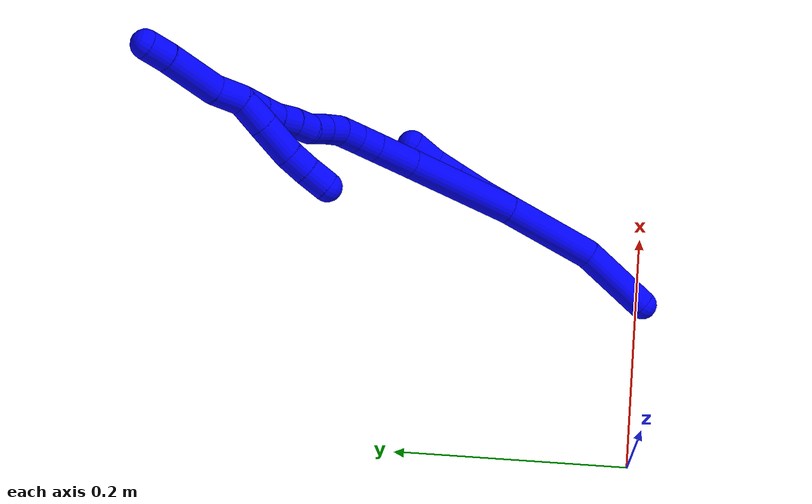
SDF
<sdf version="1.7">
 <world name="default">
  <model name="1">
   <static>0</static>
   <link name="1">
    <collision name="collision-cylinder-e_1_2_8">
     <pose>0.001618 -4.9e-05 -0.042204 3.14043 0.038319 3.08075</pose>
     <geometry><cylinder><radius>0.0125</radius><length>0.08447</length></cylinder></geometry>
     <surface>
      <friction><ode><mu>1.16</mu><mu2>1.16</mu2><slip1>0</slip1><slip2>0</slip2></ode></friction>
      <contact><ode><kp>1e+06</kp><kd>1</kd><max_vel>0</max_vel><min_depth>0.001</min_depth></ode></contact>
     </surface>
    </collision>
    <visual name="visual-cylinder-e_1_2_8">
     <pose>0.001618 -4.9e-05 -0.042204 3.14043 0.038319 3.08075</pose>
     <geometry><cylinder><radius>0.0125</radius><length>0.08447</length></cylinder></geometry>
     <material><ambient>0 0 1 1</ambient></material>
    </visual>
    <collision name="collision-cylinder-e_2_8_6">
     <pose>0.012809 -0.004185 -0.115476 3.0108 0.296504 2.3151</pose>
     <geometry><cylinder><radius>0.0125</radius><length>0.06553</length></cylinder></geometry>
     <surface>
      <friction><ode><mu>1.16</mu><mu2>1.16</mu2><slip1>0</slip1><slip2>0</slip2></ode></friction>
      <contact><ode><kp>1e+06</kp><kd>1</kd><max_vel>0</max_vel><min_depth>0.001</min_depth></ode></contact>
     </surface>
    </collision>
    <visual name="visual-cylinder-e_2_8_6">
     <pose>0.012809 -0.004185 -0.115476 3.0108 0.296504 2.3151</pose>
     <geometry><cylinder><radius>0.0125</radius><length>0.06553</length></cylinder></geometry>
     <material><ambient>0 0 1 1</ambient></material>
    </visual>
    <collision name="collision-cylinder-e_1_2_9">
     <pose>-0.002878 -0.00114 0.012801 0.088859 -0.220301 -0.009834</pose>
     <geometry><cylinder><radius>0.0125</radius><length>0.026339</length></cylinder></geometry>
     <surface>
      <friction><ode><mu>1.16</mu><mu2>1.16</mu2><slip1>0</slip1><slip2>0</slip2></ode></friction>
      <contact><ode><kp>1e+06</kp><kd>1</kd><max_vel>0</max_vel><min_depth>0.001</min_depth></ode></contact>
     </surface>
    </collision>
    <visual name="visual-cylinder-e_1_2_9">
     <pose>-0.002878 -0.00114 0.012801 0.088859 -0.220301 -0.009834</pose>
     <geometry><cylinder><radius>0.0125</radius><length>0.026339</length></cylinder></geometry>
     <material><ambient>0 0 1 1</ambient></material>
    </visual>
    <collision name="collision-cylinder-e_2_9_10">
     <pose>-0.009968 -0.003389 0.037918 0.089725 -0.328316 -0.014873</pose>
     <geometry><cylinder><radius>0.0125</radius><length>0.02613</length></cylinder></geometry>
     <surface>
      <friction><ode><mu>1.16</mu><mu2>1.16</mu2><slip1>0</slip1><slip2>0</slip2></ode></friction>
      <contact><ode><kp>1e+06</kp><kd>1</kd><max_vel>0</max_vel><min_depth>0.001</min_depth></ode></contact>
     </surface>
    </collision>
    <visual name="visual-cylinder-e_2_9_10">
     <pose>-0.009968 -0.003389 0.037918 0.089725 -0.328316 -0.014873</pose>
     <geometry><cylinder><radius>0.0125</radius><length>0.02613</length></cylinder></geometry>
     <material><ambient>0 0 1 1</ambient></material>
    </visual>
    <collision name="collision-cylinder-e_3_10_11">
     <pose>-0.01774 -0.005379 0.060574 0.085091 -0.330431 -0.014196</pose>
     <geometry><cylinder><radius>0.0125</radius><length>0.021939</length></cylinder></geometry>
     <surface>
      <friction><ode><mu>1.16</mu><mu2>1.16</mu2><slip1>0</slip1><slip2>0</slip2></ode></friction>
      <contact><ode><kp>1e+06</kp><kd>1</kd><max_vel>0</max_vel><min_depth>0.001</min_depth></ode></contact>
     </surface>
    </collision>
    <visual name="visual-cylinder-e_3_10_11">
     <pose>-0.01774 -0.005379 0.060574 0.085091 -0.330431 -0.014196</pose>
     <geometry><cylinder><radius>0.0125</radius><length>0.021939</length></cylinder></geometry>
     <material><ambient>0 0 1 1</ambient></material>
    </visual>
    <collision name="collision-cylinder-e_4_11_5">
     <pose>-0.023196 -0.004497 0.083444 -0.139857 -0.148766 0.010439</pose>
     <geometry><cylinder><radius>0.0125</radius><length>0.025592</length></cylinder></geometry>
     <surface>
      <friction><ode><mu>1.16</mu><mu2>1.16</mu2><slip1>0</slip1><slip2>0</slip2></ode></friction>
      <contact><ode><kp>1e+06</kp><kd>1</kd><max_vel>0</max_vel><min_depth>0.001</min_depth></ode></contact>
     </surface>
    </collision>
    <visual name="visual-cylinder-e_4_11_5">
     <pose>-0.023196 -0.004497 0.083444 -0.139857 -0.148766 0.010439</pose>
     <geometry><cylinder><radius>0.0125</radius><length>0.025592</length></cylinder></geometry>
     <material><ambient>0 0 1 1</ambient></material>
    </visual>
    <collision name="collision-cylinder-e_1_2_12">
     <pose>0.005429 5e-05 0.050999 -0.000976 0.106056 -5.2e-05</pose>
     <geometry><cylinder><radius>0.0125</radius><length>0.102573</length></cylinder></geometry>
     <surface>
      <friction><ode><mu>1.16</mu><mu2>1.16</mu2><slip1>0</slip1><slip2>0</slip2></ode></friction>
      <contact><ode><kp>1e+06</kp><kd>1</kd><max_vel>0</max_vel><min_depth>0.001</min_depth></ode></contact>
     </surface>
    </collision>
    <visual name="visual-cylinder-e_1_2_12">
     <pose>0.005429 5e-05 0.050999 -0.000976 0.106056 -5.2e-05</pose>
     <geometry><cylinder><radius>0.0125</radius><length>0.102573</length></cylinder></geometry>
     <material><ambient>0 0 1 1</ambient></material>
    </visual>
    <collision name="collision-cylinder-e_2_12_13">
     <pose>0.01356 0.00046 0.120339 -0.019657 0.146229 -0.00144</pose>
     <geometry><cylinder><radius>0.0125</radius><length>0.037088</length></cylinder></geometry>
     <surface>
      <friction><ode><mu>1.16</mu><mu2>1.16</mu2><slip1>0</slip1><slip2>0</slip2></ode></friction>
      <contact><ode><kp>1e+06</kp><kd>1</kd><max_vel>0</max_vel><min_depth>0.001</min_depth></ode></contact>
     </surface>
    </collision>
    <visual name="visual-cylinder-e_2_12_13">
     <pose>0.01356 0.00046 0.120339 -0.019657 0.146229 -0.00144</pose>
     <geometry><cylinder><radius>0.0125</radius><length>0.037088</length></cylinder></geometry>
     <material><ambient>0 0 1 1</ambient></material>
    </visual>
    <collision name="collision-cylinder-e_3_13_14">
     <pose>0.017778 0.001038 0.148612 -0.021862 0.151491 -0.001659</pose>
     <geometry><cylinder><radius>0.0125</radius><length>0.020094</length></cylinder></geometry>
     <surface>
      <friction><ode><mu>1.16</mu><mu2>1.16</mu2><slip1>0</slip1><slip2>0</slip2></ode></friction>
      <contact><ode><kp>1e+06</kp><kd>1</kd><max_vel>0</max_vel><min_depth>0.001</min_depth></ode></contact>
     </surface>
    </collision>
    <visual name="visual-cylinder-e_3_13_14">
     <pose>0.017778 0.001038 0.148612 -0.021862 0.151491 -0.001659</pose>
     <geometry><cylinder><radius>0.0125</radius><length>0.020094</length></cylinder></geometry>
     <material><ambient>0 0 1 1</ambient></material>
    </visual>
    <collision name="collision-cylinder-e_4_14_15">
     <pose>0.02241 0.002307 0.168101 -0.109589 0.313308 -0.017326</pose>
     <geometry><cylinder><radius>0.0125</radius><length>0.020219</length></cylinder></geometry>
     <surface>
      <friction><ode><mu>1.16</mu><mu2>1.16</mu2><slip1>0</slip1><slip2>0</slip2></ode></friction>
      <contact><ode><kp>1e+06</kp><kd>1</kd><max_vel>0</max_vel><min_depth>0.001</min_depth></ode></contact>
     </surface>
    </collision>
    <visual name="visual-cylinder-e_4_14_15">
     <pose>0.02241 0.002307 0.168101 -0.109589 0.313308 -0.017326</pose>
     <geometry><cylinder><radius>0.0125</radius><length>0.020219</length></cylinder></geometry>
     <material><ambient>0 0 1 1</ambient></material>
    </visual>
    <collision name="collision-cylinder-e_5_15_16">
     <pose>0.031077 0.003463 0.185988 -0.012569 0.587879 -0.003805</pose>
     <geometry><cylinder><radius>0.0125</radius><length>0.020016</length></cylinder></geometry>
     <surface>
      <friction><ode><mu>1.16</mu><mu2>1.16</mu2><slip1>0</slip1><slip2>0</slip2></ode></friction>
      <contact><ode><kp>1e+06</kp><kd>1</kd><max_vel>0</max_vel><min_depth>0.001</min_depth></ode></contact>
     </surface>
    </collision>
    <visual name="visual-cylinder-e_5_15_16">
     <pose>0.031077 0.003463 0.185988 -0.012569 0.587879 -0.003805</pose>
     <geometry><cylinder><radius>0.0125</radius><length>0.020016</length></cylinder></geometry>
     <material><ambient>0 0 1 1</ambient></material>
    </visual>
    <collision name="collision-cylinder-e_6_16_17">
     <pose>0.043248 0.004052 0.201797 -0.0646 0.723429 -0.024449</pose>
     <geometry><cylinder><radius>0.0125</radius><length>0.020004</length></cylinder></geometry>
     <surface>
      <friction><ode><mu>1.16</mu><mu2>1.16</mu2><slip1>0</slip1><slip2>0</slip2></ode></friction>
      <contact><ode><kp>1e+06</kp><kd>1</kd><max_vel>0</max_vel><min_depth>0.001</min_depth></ode></contact>
     </surface>
    </collision>
    <visual name="visual-cylinder-e_6_16_17">
     <pose>0.043248 0.004052 0.201797 -0.0646 0.723429 -0.024449</pose>
     <geometry><cylinder><radius>0.0125</radius><length>0.020004</length></cylinder></geometry>
     <material><ambient>0 0 1 1</ambient></material>
    </visual>
    <collision name="collision-cylinder-e_7_17_18">
     <pose>0.053791 0.005833 0.218387 -0.141419 0.402907 -0.028927</pose>
     <geometry><cylinder><radius>0.0125</radius><length>0.020004</length></cylinder></geometry>
     <surface>
      <friction><ode><mu>1.16</mu><mu2>1.16</mu2><slip1>0</slip1><slip2>0</slip2></ode></friction>
      <contact><ode><kp>1e+06</kp><kd>1</kd><max_vel>0</max_vel><min_depth>0.001</min_depth></ode></contact>
     </surface>
    </collision>
    <visual name="visual-cylinder-e_7_17_18">
     <pose>0.053791 0.005833 0.218387 -0.141419 0.402907 -0.028927</pose>
     <geometry><cylinder><radius>0.0125</radius><length>0.020004</length></cylinder></geometry>
     <material><ambient>0 0 1 1</ambient></material>
    </visual>
    <collision name="collision-cylinder-e_8_18_19">
     <pose>0.06221 0.00753 0.23642 -0.044783 0.466423 -0.010639</pose>
     <geometry><cylinder><radius>0.0125</radius><length>0.020001</length></cylinder></geometry>
     <surface>
      <friction><ode><mu>1.16</mu><mu2>1.16</mu2><slip1>0</slip1><slip2>0</slip2></ode></friction>
      <contact><ode><kp>1e+06</kp><kd>1</kd><max_vel>0</max_vel><min_depth>0.001</min_depth></ode></contact>
     </surface>
    </collision>
    <visual name="visual-cylinder-e_8_18_19">
     <pose>0.06221 0.00753 0.23642 -0.044783 0.466423 -0.010639</pose>
     <geometry><cylinder><radius>0.0125</radius><length>0.020001</length></cylinder></geometry>
     <material><ambient>0 0 1 1</ambient></material>
    </visual>
    <collision name="collision-cylinder-e_9_19_20">
     <pose>0.070106 0.009662 0.254587 -0.18531 0.346777 -0.032547</pose>
     <geometry><cylinder><radius>0.0125</radius><length>0.02</length></cylinder></geometry>
     <surface>
      <friction><ode><mu>1.16</mu><mu2>1.16</mu2><slip1>0</slip1><slip2>0</slip2></ode></friction>
      <contact><ode><kp>1e+06</kp><kd>1</kd><max_vel>0</max_vel><min_depth>0.001</min_depth></ode></contact>
     </surface>
    </collision>
    <visual name="visual-cylinder-e_9_19_20">
     <pose>0.070106 0.009662 0.254587 -0.18531 0.346777 -0.032547</pose>
     <geometry><cylinder><radius>0.0125</radius><length>0.02</length></cylinder></geometry>
     <material><ambient>0 0 1 1</ambient></material>
    </visual>
    <collision name="collision-cylinder-e_10_20_1">
     <pose>0.076649 0.013091 0.27317 -0.179652 0.319919 -0.029061</pose>
     <geometry><cylinder><radius>0.0125</radius><length>0.02</length></cylinder></geometry>
     <surface>
      <friction><ode><mu>1.16</mu><mu2>1.16</mu2><slip1>0</slip1><slip2>0</slip2></ode></friction>
      <contact><ode><kp>1e+06</kp><kd>1</kd><max_vel>0</max_vel><min_depth>0.001</min_depth></ode></contact>
     </surface>
    </collision>
    <visual name="visual-cylinder-e_10_20_1">
     <pose>0.076649 0.013091 0.27317 -0.179652 0.319919 -0.029061</pose>
     <geometry><cylinder><radius>0.0125</radius><length>0.02</length></cylinder></geometry>
     <material><ambient>0 0 1 1</ambient></material>
    </visual>
    <collision name="collision-cylinder-e_1_1_21">
     <pose>0.083182 0.01123 0.270246 2.85929 0.259295 1.48485</pose>
     <geometry><cylinder><radius>0.0125</radius><length>0.026422</length></cylinder></geometry>
     <surface>
      <friction><ode><mu>1.16</mu><mu2>1.16</mu2><slip1>0</slip1><slip2>0</slip2></ode></friction>
      <contact><ode><kp>1e+06</kp><kd>1</kd><max_vel>0</max_vel><min_depth>0.001</min_depth></ode></contact>
     </surface>
    </collision>
    <visual name="visual-cylinder-e_1_1_21">
     <pose>0.083182 0.01123 0.270246 2.85929 0.259295 1.48485</pose>
     <geometry><cylinder><radius>0.0125</radius><length>0.026422</length></cylinder></geometry>
     <material><ambient>0 0 1 1</ambient></material>
    </visual>
    <collision name="collision-cylinder-e_2_21_22">
     <pose>0.090524 0.003427 0.242882 2.86749 0.246997 1.46568</pose>
     <geometry><cylinder><radius>0.0125</radius><length>0.032353</length></cylinder></geometry>
     <surface>
      <friction><ode><mu>1.16</mu><mu2>1.16</mu2><slip1>0</slip1><slip2>0</slip2></ode></friction>
      <contact><ode><kp>1e+06</kp><kd>1</kd><max_vel>0</max_vel><min_depth>0.001</min_depth></ode></contact>
     </surface>
    </collision>
    <visual name="visual-cylinder-e_2_21_22">
     <pose>0.090524 0.003427 0.242882 2.86749 0.246997 1.46568</pose>
     <geometry><cylinder><radius>0.0125</radius><length>0.032353</length></cylinder></geometry>
     <material><ambient>0 0 1 1</ambient></material>
    </visual>
    <collision name="collision-cylinder-e_3_22_23">
     <pose>0.096955 -0.002178 0.217986 3.00373 0.245299 2.12049</pose>
     <geometry><cylinder><radius>0.0125</radius><length>0.020391</length></cylinder></geometry>
     <surface>
      <friction><ode><mu>1.16</mu><mu2>1.16</mu2><slip1>0</slip1><slip2>0</slip2></ode></friction>
      <contact><ode><kp>1e+06</kp><kd>1</kd><max_vel>0</max_vel><min_depth>0.001</min_depth></ode></contact>
     </surface>
    </collision>
    <visual name="visual-cylinder-e_3_22_23">
     <pose>0.096955 -0.002178 0.217986 3.00373 0.245299 2.12049</pose>
     <geometry><cylinder><radius>0.0125</radius><length>0.020391</length></cylinder></geometry>
     <material><ambient>0 0 1 1</ambient></material>
    </visual>
    <collision name="collision-cylinder-e_4_23_4">
     <pose>0.102252 -0.004164 0.198181 3.07898 0.274254 2.69528</pose>
     <geometry><cylinder><radius>0.0125</radius><length>0.020833</length></cylinder></geometry>
     <surface>
      <friction><ode><mu>1.16</mu><mu2>1.16</mu2><slip1>0</slip1><slip2>0</slip2></ode></friction>
      <contact><ode><kp>1e+06</kp><kd>1</kd><max_vel>0</max_vel><min_depth>0.001</min_depth></ode></contact>
     </surface>
    </collision>
    <visual name="visual-cylinder-e_4_23_4">
     <pose>0.102252 -0.004164 0.198181 3.07898 0.274254 2.69528</pose>
     <geometry><cylinder><radius>0.0125</radius><length>0.020833</length></cylinder></geometry>
     <material><ambient>0 0 1 1</ambient></material>
    </visual>
    <collision name="collision-cylinder-e_1_1_24">
     <pose>0.081813 0.014195 0.295543 0.045418 0.153516 0.003494</pose>
     <geometry><cylinder><radius>0.0125</radius><length>0.026403</length></cylinder></geometry>
     <surface>
      <friction><ode><mu>1.16</mu><mu2>1.16</mu2><slip1>0</slip1><slip2>0</slip2></ode></friction>
      <contact><ode><kp>1e+06</kp><kd>1</kd><max_vel>0</max_vel><min_depth>0.001</min_depth></ode></contact>
     </surface>
    </collision>
    <visual name="visual-cylinder-e_1_1_24">
     <pose>0.081813 0.014195 0.295543 0.045418 0.153516 0.003494</pose>
     <geometry><cylinder><radius>0.0125</radius><length>0.026403</length></cylinder></geometry>
     <material><ambient>0 0 1 1</ambient></material>
    </visual>
    <collision name="collision-cylinder-e_2_24_25">
     <pose>0.086846 0.018128 0.333752 -0.177817 0.117309 -0.010469</pose>
     <geometry><cylinder><radius>0.0125</radius><length>0.051514</length></cylinder></geometry>
     <surface>
      <friction><ode><mu>1.16</mu><mu2>1.16</mu2><slip1>0</slip1><slip2>0</slip2></ode></friction>
      <contact><ode><kp>1e+06</kp><kd>1</kd><max_vel>0</max_vel><min_depth>0.001</min_depth></ode></contact>
     </surface>
    </collision>
    <visual name="visual-cylinder-e_2_24_25">
     <pose>0.086846 0.018128 0.333752 -0.177817 0.117309 -0.010469</pose>
     <geometry><cylinder><radius>0.0125</radius><length>0.051514</length></cylinder></geometry>
     <material><ambient>0 0 1 1</ambient></material>
    </visual>
    <collision name="collision-cylinder-e_3_25_3">
     <pose>0.091065 0.023838 0.369841 -0.108226 0.109235 -0.005923</pose>
     <geometry><cylinder><radius>0.0125</radius><length>0.022083</length></cylinder></geometry>
     <surface>
      <friction><ode><mu>1.16</mu><mu2>1.16</mu2><slip1>0</slip1><slip2>0</slip2></ode></friction>
      <contact><ode><kp>1e+06</kp><kd>1</kd><max_vel>0</max_vel><min_depth>0.001</min_depth></ode></contact>
     </surface>
    </collision>
    <visual name="visual-cylinder-e_3_25_3">
     <pose>0.091065 0.023838 0.369841 -0.108226 0.109235 -0.005923</pose>
     <geometry><cylinder><radius>0.0125</radius><length>0.022083</length></cylinder></geometry>
     <material><ambient>0 0 1 1</ambient></material>
    </visual>
    <collision name="collision-sphere-3">
     <pose>0.092268 0.025023 0.380752 0 -0 0</pose>
     <geometry><sphere><radius>0.0125</radius></sphere></geometry>
     <surface>
      <friction><ode><mu>1.16</mu><mu2>1.16</mu2><slip1>0</slip1><slip2>0</slip2></ode></friction>
      <contact><ode><kp>1e+06</kp><kd>1</kd><max_vel>0</max_vel><min_depth>0.001</min_depth></ode></contact>
     </surface>
    </collision>
    <visual name="visual-sphere-3">
     <pose>0.092268 0.025023 0.380752 0 -0 0</pose>
     <geometry><sphere><radius>0.0125</radius></sphere></geometry>
     <material><ambient>0 0 1 1</ambient></material>
    </visual>
    <collision name="collision-sphere-25">
     <pose>0.089861 0.022652 0.358929 0 -0 0</pose>
     <geometry><sphere><radius>0.0125</radius></sphere></geometry>
     <surface>
      <friction><ode><mu>1.16</mu><mu2>1.16</mu2><slip1>0</slip1><slip2>0</slip2></ode></friction>
      <contact><ode><kp>1e+06</kp><kd>1</kd><max_vel>0</max_vel><min_depth>0.001</min_depth></ode></contact>
     </surface>
    </collision>
    <visual name="visual-sphere-25">
     <pose>0.089861 0.022652 0.358929 0 -0 0</pose>
     <geometry><sphere><radius>0.0125</radius></sphere></geometry>
     <material><ambient>0 0 1 1</ambient></material>
    </visual>
    <collision name="collision-sphere-24">
     <pose>0.083832 0.013603 0.308575 0 -0 0</pose>
     <geometry><sphere><radius>0.0125</radius></sphere></geometry>
     <surface>
      <friction><ode><mu>1.16</mu><mu2>1.16</mu2><slip1>0</slip1><slip2>0</slip2></ode></friction>
      <contact><ode><kp>1e+06</kp><kd>1</kd><max_vel>0</max_vel><min_depth>0.001</min_depth></ode></contact>
     </surface>
    </collision>
    <visual name="visual-sphere-24">
     <pose>0.083832 0.013603 0.308575 0 -0 0</pose>
     <geometry><sphere><radius>0.0125</radius></sphere></geometry>
     <material><ambient>0 0 1 1</ambient></material>
    </visual>
    <collision name="collision-sphere-4">
     <pose>0.105073 -0.004792 0.188173 0 -0 0</pose>
     <geometry><sphere><radius>0.0125</radius></sphere></geometry>
     <surface>
      <friction><ode><mu>1.16</mu><mu2>1.16</mu2><slip1>0</slip1><slip2>0</slip2></ode></friction>
      <contact><ode><kp>1e+06</kp><kd>1</kd><max_vel>0</max_vel><min_depth>0.001</min_depth></ode></contact>
     </surface>
    </collision>
    <visual name="visual-sphere-4">
     <pose>0.105073 -0.004792 0.188173 0 -0 0</pose>
     <geometry><sphere><radius>0.0125</radius></sphere></geometry>
     <material><ambient>0 0 1 1</ambient></material>
    </visual>
    <collision name="collision-sphere-23">
     <pose>0.099431 -0.003537 0.208189 0 -0 0</pose>
     <geometry><sphere><radius>0.0125</radius></sphere></geometry>
     <surface>
      <friction><ode><mu>1.16</mu><mu2>1.16</mu2><slip1>0</slip1><slip2>0</slip2></ode></friction>
      <contact><ode><kp>1e+06</kp><kd>1</kd><max_vel>0</max_vel><min_depth>0.001</min_depth></ode></contact>
     </surface>
    </collision>
    <visual name="visual-sphere-23">
     <pose>0.099431 -0.003537 0.208189 0 -0 0</pose>
     <geometry><sphere><radius>0.0125</radius></sphere></geometry>
     <material><ambient>0 0 1 1</ambient></material>
    </visual>
    <collision name="collision-sphere-22">
     <pose>0.094479 -0.000818 0.227782 0 -0 0</pose>
     <geometry><sphere><radius>0.0125</radius></sphere></geometry>
     <surface>
      <friction><ode><mu>1.16</mu><mu2>1.16</mu2><slip1>0</slip1><slip2>0</slip2></ode></friction>
      <contact><ode><kp>1e+06</kp><kd>1</kd><max_vel>0</max_vel><min_depth>0.001</min_depth></ode></contact>
     </surface>
    </collision>
    <visual name="visual-sphere-22">
     <pose>0.094479 -0.000818 0.227782 0 -0 0</pose>
     <geometry><sphere><radius>0.0125</radius></sphere></geometry>
     <material><ambient>0 0 1 1</ambient></material>
    </visual>
    <collision name="collision-sphere-21">
     <pose>0.086569 0.007673 0.257982 0 -0 0</pose>
     <geometry><sphere><radius>0.0125</radius></sphere></geometry>
     <surface>
      <friction><ode><mu>1.16</mu><mu2>1.16</mu2><slip1>0</slip1><slip2>0</slip2></ode></friction>
      <contact><ode><kp>1e+06</kp><kd>1</kd><max_vel>0</max_vel><min_depth>0.001</min_depth></ode></contact>
     </surface>
    </collision>
    <visual name="visual-sphere-21">
     <pose>0.086569 0.007673 0.257982 0 -0 0</pose>
     <geometry><sphere><radius>0.0125</radius></sphere></geometry>
     <material><ambient>0 0 1 1</ambient></material>
    </visual>
    <collision name="collision-sphere-1">
     <pose>0.079794 0.014788 0.28251 0 -0 0</pose>
     <geometry><sphere><radius>0.0125</radius></sphere></geometry>
     <surface>
      <friction><ode><mu>1.16</mu><mu2>1.16</mu2><slip1>0</slip1><slip2>0</slip2></ode></friction>
      <contact><ode><kp>1e+06</kp><kd>1</kd><max_vel>0</max_vel><min_depth>0.001</min_depth></ode></contact>
     </surface>
    </collision>
    <visual name="visual-sphere-1">
     <pose>0.079794 0.014788 0.28251 0 -0 0</pose>
     <geometry><sphere><radius>0.0125</radius></sphere></geometry>
     <material><ambient>0 0 1 1</ambient></material>
    </visual>
    <collision name="collision-sphere-11">
     <pose>-0.021299 -0.006261 0.070913 0 -0 0</pose>
     <geometry><sphere><radius>0.0125</radius></sphere></geometry>
     <surface>
      <friction><ode><mu>1.16</mu><mu2>1.16</mu2><slip1>0</slip1><slip2>0</slip2></ode></friction>
      <contact><ode><kp>1e+06</kp><kd>1</kd><max_vel>0</max_vel><min_depth>0.001</min_depth></ode></contact>
     </surface>
    </collision>
    <visual name="visual-sphere-11">
     <pose>-0.021299 -0.006261 0.070913 0 -0 0</pose>
     <geometry><sphere><radius>0.0125</radius></sphere></geometry>
     <material><ambient>0 0 1 1</ambient></material>
    </visual>
    <collision name="collision-sphere-10">
     <pose>-0.014181 -0.004497 0.050236 0 -0 0</pose>
     <geometry><sphere><radius>0.0125</radius></sphere></geometry>
     <surface>
      <friction><ode><mu>1.16</mu><mu2>1.16</mu2><slip1>0</slip1><slip2>0</slip2></ode></friction>
      <contact><ode><kp>1e+06</kp><kd>1</kd><max_vel>0</max_vel><min_depth>0.001</min_depth></ode></contact>
     </surface>
    </collision>
    <visual name="visual-sphere-10">
     <pose>-0.014181 -0.004497 0.050236 0 -0 0</pose>
     <geometry><sphere><radius>0.0125</radius></sphere></geometry>
     <material><ambient>0 0 1 1</ambient></material>
    </visual>
    <collision name="collision-sphere-6">
     <pose>0.022382 -0.008272 -0.146543 0 -0 0</pose>
     <geometry><sphere><radius>0.0125</radius></sphere></geometry>
     <surface>
      <friction><ode><mu>1.16</mu><mu2>1.16</mu2><slip1>0</slip1><slip2>0</slip2></ode></friction>
      <contact><ode><kp>1e+06</kp><kd>1</kd><max_vel>0</max_vel><min_depth>0.001</min_depth></ode></contact>
     </surface>
    </collision>
    <visual name="visual-sphere-6">
     <pose>0.022382 -0.008272 -0.146543 0 -0 0</pose>
     <geometry><sphere><radius>0.0125</radius></sphere></geometry>
     <material><ambient>0 0 1 1</ambient></material>
    </visual>
    <collision name="collision-sphere-9">
     <pose>-0.005756 -0.002281 0.025601 0 -0 0</pose>
     <geometry><sphere><radius>0.0125</radius></sphere></geometry>
     <surface>
      <friction><ode><mu>1.16</mu><mu2>1.16</mu2><slip1>0</slip1><slip2>0</slip2></ode></friction>
      <contact><ode><kp>1e+06</kp><kd>1</kd><max_vel>0</max_vel><min_depth>0.001</min_depth></ode></contact>
     </surface>
    </collision>
    <visual name="visual-sphere-9">
     <pose>-0.005756 -0.002281 0.025601 0 -0 0</pose>
     <geometry><sphere><radius>0.0125</radius></sphere></geometry>
     <material><ambient>0 0 1 1</ambient></material>
    </visual>
    <collision name="collision-sphere-2">
     <geometry><sphere><radius>0.0125</radius></sphere></geometry>
     <surface>
      <friction><ode><mu>1.16</mu><mu2>1.16</mu2><slip1>0</slip1><slip2>0</slip2></ode></friction>
      <contact><ode><kp>1e+06</kp><kd>1</kd><max_vel>0</max_vel><min_depth>0.001</min_depth></ode></contact>
     </surface>
    </collision>
    <visual name="visual-sphere-2">
     <geometry><sphere><radius>0.0125</radius></sphere></geometry>
     <material><ambient>0 0 1 1</ambient></material>
    </visual>
    <collision name="collision-sphere-19">
     <pose>0.066707 0.007929 0.245343 0 -0 0</pose>
     <geometry><sphere><radius>0.0125</radius></sphere></geometry>
     <surface>
      <friction><ode><mu>1.16</mu><mu2>1.16</mu2><slip1>0</slip1><slip2>0</slip2></ode></friction>
      <contact><ode><kp>1e+06</kp><kd>1</kd><max_vel>0</max_vel><min_depth>0.001</min_depth></ode></contact>
     </surface>
    </collision>
    <visual name="visual-sphere-19">
     <pose>0.066707 0.007929 0.245343 0 -0 0</pose>
     <geometry><sphere><radius>0.0125</radius></sphere></geometry>
     <material><ambient>0 0 1 1</ambient></material>
    </visual>
    <collision name="collision-sphere-8">
     <pose>0.003236 -9.8e-05 -0.084408 0 -0 0</pose>
     <geometry><sphere><radius>0.0125</radius></sphere></geometry>
     <surface>
      <friction><ode><mu>1.16</mu><mu2>1.16</mu2><slip1>0</slip1><slip2>0</slip2></ode></friction>
      <contact><ode><kp>1e+06</kp><kd>1</kd><max_vel>0</max_vel><min_depth>0.001</min_depth></ode></contact>
     </surface>
    </collision>
    <visual name="visual-sphere-8">
     <pose>0.003236 -9.8e-05 -0.084408 0 -0 0</pose>
     <geometry><sphere><radius>0.0125</radius></sphere></geometry>
     <material><ambient>0 0 1 1</ambient></material>
    </visual>
    <collision name="collision-sphere-5">
     <pose>-0.025093 -0.002733 0.095975 0 -0 0</pose>
     <geometry><sphere><radius>0.0125</radius></sphere></geometry>
     <surface>
      <friction><ode><mu>1.16</mu><mu2>1.16</mu2><slip1>0</slip1><slip2>0</slip2></ode></friction>
      <contact><ode><kp>1e+06</kp><kd>1</kd><max_vel>0</max_vel><min_depth>0.001</min_depth></ode></contact>
     </surface>
    </collision>
    <visual name="visual-sphere-5">
     <pose>-0.025093 -0.002733 0.095975 0 -0 0</pose>
     <geometry><sphere><radius>0.0125</radius></sphere></geometry>
     <material><ambient>0 0 1 1</ambient></material>
    </visual>
    <collision name="collision-sphere-12">
     <pose>0.010858 0.0001 0.101997 0 -0 0</pose>
     <geometry><sphere><radius>0.0125</radius></sphere></geometry>
     <surface>
      <friction><ode><mu>1.16</mu><mu2>1.16</mu2><slip1>0</slip1><slip2>0</slip2></ode></friction>
      <contact><ode><kp>1e+06</kp><kd>1</kd><max_vel>0</max_vel><min_depth>0.001</min_depth></ode></contact>
     </surface>
    </collision>
    <visual name="visual-sphere-12">
     <pose>0.010858 0.0001 0.101997 0 -0 0</pose>
     <geometry><sphere><radius>0.0125</radius></sphere></geometry>
     <material><ambient>0 0 1 1</ambient></material>
    </visual>
    <collision name="collision-sphere-13">
     <pose>0.016262 0.000821 0.138682 0 -0 0</pose>
     <geometry><sphere><radius>0.0125</radius></sphere></geometry>
     <surface>
      <friction><ode><mu>1.16</mu><mu2>1.16</mu2><slip1>0</slip1><slip2>0</slip2></ode></friction>
      <contact><ode><kp>1e+06</kp><kd>1</kd><max_vel>0</max_vel><min_depth>0.001</min_depth></ode></contact>
     </surface>
    </collision>
    <visual name="visual-sphere-13">
     <pose>0.016262 0.000821 0.138682 0 -0 0</pose>
     <geometry><sphere><radius>0.0125</radius></sphere></geometry>
     <material><ambient>0 0 1 1</ambient></material>
    </visual>
    <collision name="collision-sphere-14">
     <pose>0.019295 0.001255 0.158541 0 -0 0</pose>
     <geometry><sphere><radius>0.0125</radius></sphere></geometry>
     <surface>
      <friction><ode><mu>1.16</mu><mu2>1.16</mu2><slip1>0</slip1><slip2>0</slip2></ode></friction>
      <contact><ode><kp>1e+06</kp><kd>1</kd><max_vel>0</max_vel><min_depth>0.001</min_depth></ode></contact>
     </surface>
    </collision>
    <visual name="visual-sphere-14">
     <pose>0.019295 0.001255 0.158541 0 -0 0</pose>
     <geometry><sphere><radius>0.0125</radius></sphere></geometry>
     <material><ambient>0 0 1 1</ambient></material>
    </visual>
    <collision name="collision-sphere-15">
     <pose>0.025526 0.003359 0.17766 0 -0 0</pose>
     <geometry><sphere><radius>0.0125</radius></sphere></geometry>
     <surface>
      <friction><ode><mu>1.16</mu><mu2>1.16</mu2><slip1>0</slip1><slip2>0</slip2></ode></friction>
      <contact><ode><kp>1e+06</kp><kd>1</kd><max_vel>0</max_vel><min_depth>0.001</min_depth></ode></contact>
     </surface>
    </collision>
    <visual name="visual-sphere-15">
     <pose>0.025526 0.003359 0.17766 0 -0 0</pose>
     <geometry><sphere><radius>0.0125</radius></sphere></geometry>
     <material><ambient>0 0 1 1</ambient></material>
    </visual>
    <collision name="collision-sphere-16">
     <pose>0.036627 0.003568 0.194315 0 -0 0</pose>
     <geometry><sphere><radius>0.0125</radius></sphere></geometry>
     <surface>
      <friction><ode><mu>1.16</mu><mu2>1.16</mu2><slip1>0</slip1><slip2>0</slip2></ode></friction>
      <contact><ode><kp>1e+06</kp><kd>1</kd><max_vel>0</max_vel><min_depth>0.001</min_depth></ode></contact>
     </surface>
    </collision>
    <visual name="visual-sphere-16">
     <pose>0.036627 0.003568 0.194315 0 -0 0</pose>
     <geometry><sphere><radius>0.0125</radius></sphere></geometry>
     <material><ambient>0 0 1 1</ambient></material>
    </visual>
    <collision name="collision-sphere-17">
     <pose>0.049869 0.004536 0.209278 0 -0 0</pose>
     <geometry><sphere><radius>0.0125</radius></sphere></geometry>
     <surface>
      <friction><ode><mu>1.16</mu><mu2>1.16</mu2><slip1>0</slip1><slip2>0</slip2></ode></friction>
      <contact><ode><kp>1e+06</kp><kd>1</kd><max_vel>0</max_vel><min_depth>0.001</min_depth></ode></contact>
     </surface>
    </collision>
    <visual name="visual-sphere-17">
     <pose>0.049869 0.004536 0.209278 0 -0 0</pose>
     <geometry><sphere><radius>0.0125</radius></sphere></geometry>
     <material><ambient>0 0 1 1</ambient></material>
    </visual>
    <collision name="collision-sphere-18">
     <pose>0.057713 0.00713 0.227496 0 -0 0</pose>
     <geometry><sphere><radius>0.0125</radius></sphere></geometry>
     <surface>
      <friction><ode><mu>1.16</mu><mu2>1.16</mu2><slip1>0</slip1><slip2>0</slip2></ode></friction>
      <contact><ode><kp>1e+06</kp><kd>1</kd><max_vel>0</max_vel><min_depth>0.001</min_depth></ode></contact>
     </surface>
    </collision>
    <visual name="visual-sphere-18">
     <pose>0.057713 0.00713 0.227496 0 -0 0</pose>
     <geometry><sphere><radius>0.0125</radius></sphere></geometry>
     <material><ambient>0 0 1 1</ambient></material>
    </visual>
    <collision name="collision-sphere-20">
     <pose>0.073504 0.011395 0.26383 0 -0 0</pose>
     <geometry><sphere><radius>0.0125</radius></sphere></geometry>
     <surface>
      <friction><ode><mu>1.16</mu><mu2>1.16</mu2><slip1>0</slip1><slip2>0</slip2></ode></friction>
      <contact><ode><kp>1e+06</kp><kd>1</kd><max_vel>0</max_vel><min_depth>0.001</min_depth></ode></contact>
     </surface>
    </collision>
    <visual name="visual-sphere-20">
     <pose>0.073504 0.011395 0.26383 0 -0 0</pose>
     <geometry><sphere><radius>0.0125</radius></sphere></geometry>
     <material><ambient>0 0 1 1</ambient></material>
    </visual>
    <inertial>
     <pose>0.034865 0.003258 0.125183 0 -0 0</pose>
     <mass>0.75</mass>
     <inertia><ixx>0.000103</ixx><ixy>0</ixy><ixz>0</ixz><iyy>0.000241</iyy><iyz>0</iyz><izz>-7e-06</izz></inertia>
    </inertial>
   </link>
   <pose>0.204588 0.116532 0.068358 0.909636 -0.731635 -2.99179</pose>
  </model>
 </world>
</sdf>
